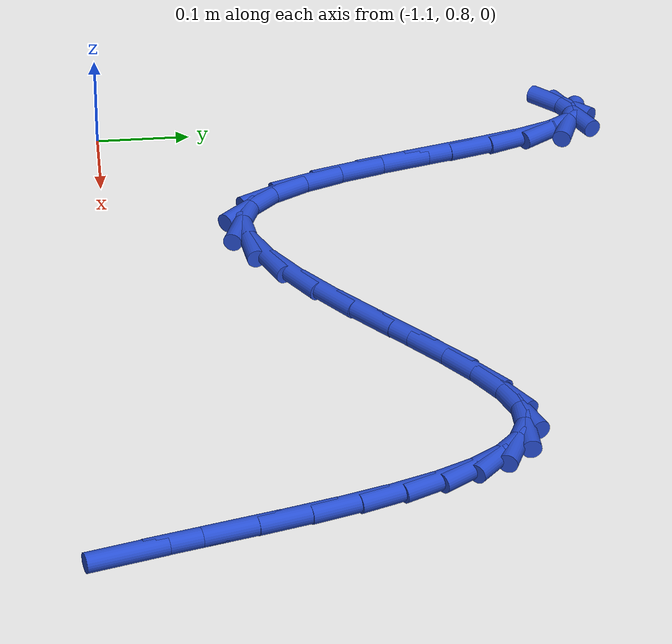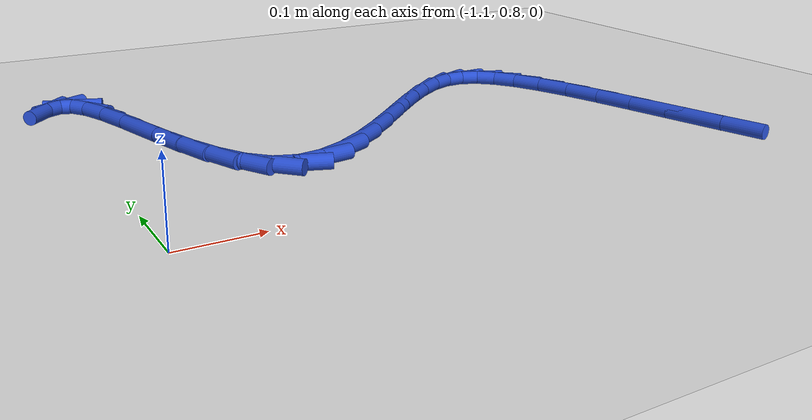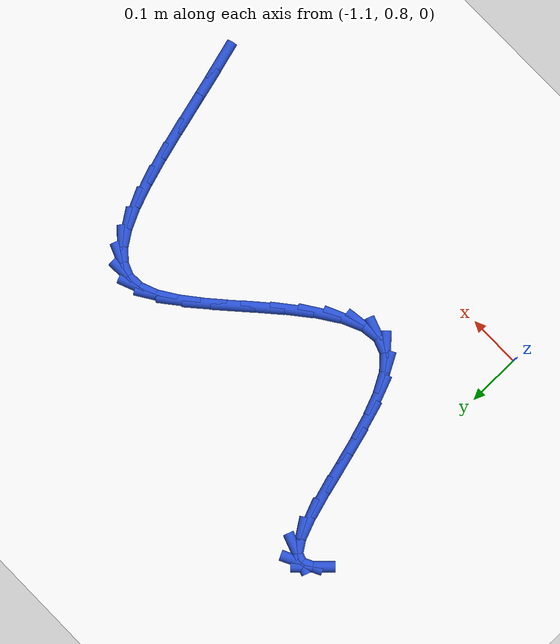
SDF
<sdf version="1.6">
 <world name="default">
  <model name="ground_plane">
   <static>1</static>
   <link name="link">
    <collision name="collision">
     <geometry><plane><normal>0 0 1</normal><size>100 100</size></plane></geometry>
     <surface><friction><ode><mu>100</mu><mu2>50</mu2></ode></friction></surface>
    </collision>
    <visual name="visual">
     <cast_shadows>0</cast_shadows>
     <geometry><plane><normal>0 0 1</normal><size>100 100</size></plane></geometry>
     <material>
      <script><uri>file://media/materials/scripts/gazebo.material</uri><name>Gazebo/WhiteGlow</name></script>
     </material>
    </visual>
   </link>
  </model>
  <model name="line">
   <link name="link_20">
    <pose>-0.34142749870786654 0.7994927071193892 0.01 0 1.57 -1.3094619707613027</pose>
    <collision name="collision">
     <geometry><cylinder><radius>0.01</radius><length>0.08</length></cylinder></geometry>
    </collision>
    <visual name="visual">
     <material>
      <script><name>Gazebo/Blue</name><uri>file://media/materials/scripts/gazebo.material</uri></script>
     </material>
     <geometry><cylinder><radius>0.01</radius><length>0.08</length></cylinder></geometry>
    </visual>
   </link>
   <link name="link_21">
    <pose>-0.35602301614095916 0.8540654192811773 0.01 0 1.57 -1.3215225272024367</pose>
    <collision name="collision">
     <geometry><cylinder><radius>0.01</radius><length>0.08</length></cylinder></geometry>
    </collision>
    <visual name="visual">
     <material>
      <script><name>Gazebo/Blue</name><uri>file://media/materials/scripts/gazebo.material</uri></script>
     </material>
     <geometry><cylinder><radius>0.01</radius><length>0.08</length></cylinder></geometry>
    </visual>
   </link>
   <link name="link_22">
    <pose>-0.3698339758669497 0.9083178458293415 0.01 0 1.57 -1.3205619688914751</pose>
    <collision name="collision">
     <geometry><cylinder><radius>0.01</radius><length>0.08</length></cylinder></geometry>
    </collision>
    <visual name="visual">
     <material>
      <script><name>Gazebo/Blue</name><uri>file://media/materials/scripts/gazebo.material</uri></script>
     </material>
     <geometry><cylinder><radius>0.01</radius><length>0.08</length></cylinder></geometry>
    </visual>
   </link>
   <link name="link_23">
    <pose>-0.3833226002028399 0.9610919812214322 0.01 0 1.57 -1.3053881172568562</pose>
    <collision name="collision">
     <geometry><cylinder><radius>0.01</radius><length>0.08</length></cylinder></geometry>
    </collision>
    <visual name="visual">
     <material>
      <script><name>Gazebo/Blue</name><uri>file://media/materials/scripts/gazebo.material</uri></script>
     </material>
     <geometry><cylinder><radius>0.01</radius><length>0.08</length></cylinder></geometry>
    </visual>
   </link>
   <link name="link_24">
    <pose>-0.3969511114656321 1.0112298199150007 0.01 0 1.57 -1.2728677406237572</pose>
    <collision name="collision">
     <geometry><cylinder><radius>0.01</radius><length>0.08</length></cylinder></geometry>
    </collision>
    <visual name="visual">
     <material>
      <script><name>Gazebo/Blue</name><uri>file://media/materials/scripts/gazebo.material</uri></script>
     </material>
     <geometry><cylinder><radius>0.01</radius><length>0.08</length></cylinder></geometry>
    </visual>
   </link>
   <link name="link_25">
    <pose>-0.4111817319723284 1.057573356367598 0.01 0 1.57 -1.216837287308311</pose>
    <collision name="collision">
     <geometry><cylinder><radius>0.01</radius><length>0.08</length></cylinder></geometry>
    </collision>
    <visual name="visual">
     <material>
      <script><name>Gazebo/Blue</name><uri>file://media/materials/scripts/gazebo.material</uri></script>
     </material>
     <geometry><cylinder><radius>0.01</radius><length>0.08</length></cylinder></geometry>
    </visual>
   </link>
   <link name="link_26">
    <pose>-0.4264766840399307 1.0989645850367746 0.01 0 1.57 -1.1258904108804455</pose>
    <collision name="collision">
     <geometry><cylinder><radius>0.01</radius><length>0.08</length></cylinder></geometry>
    </collision>
    <visual name="visual">
     <material>
      <script><name>Gazebo/Blue</name><uri>file://media/materials/scripts/gazebo.material</uri></script>
     </material>
     <geometry><cylinder><radius>0.01</radius><length>0.08</length></cylinder></geometry>
    </visual>
   </link>
   <link name="link_27">
    <pose>-0.4432981899854412 1.1342455003800818 0.01 0 1.57 -0.9794593696613393</pose>
    <collision name="collision">
     <geometry><cylinder><radius>0.01</radius><length>0.08</length></cylinder></geometry>
    </collision>
    <visual name="visual">
     <material>
      <script><name>Gazebo/Blue</name><uri>file://media/materials/scripts/gazebo.material</uri></script>
     </material>
     <geometry><cylinder><radius>0.01</radius><length>0.08</length></cylinder></geometry>
    </visual>
   </link>
   <link name="link_28">
    <pose>-0.4621084721258619 1.16225809685507 0.01 0 1.57 -0.744414785704542</pose>
    <collision name="collision">
     <geometry><cylinder><radius>0.01</radius><length>0.08</length></cylinder></geometry>
    </collision>
    <visual name="visual">
     <material>
      <script><name>Gazebo/Blue</name><uri>file://media/materials/scripts/gazebo.material</uri></script>
     </material>
     <geometry><cylinder><radius>0.01</radius><length>0.08</length></cylinder></geometry>
    </visual>
   </link>
   <link name="link_29">
    <pose>-0.4833697527781947 1.1818443689192901 0.01 0 1.57 -0.3922942334892025</pose>
    <collision name="collision">
     <geometry><cylinder><radius>0.01</radius><length>0.08</length></cylinder></geometry>
    </collision>
    <visual name="visual">
     <material>
      <script><name>Gazebo/Blue</name><uri>file://media/materials/scripts/gazebo.material</uri></script>
     </material>
     <geometry><cylinder><radius>0.01</radius><length>0.08</length></cylinder></geometry>
    </visual>
   </link>
   <link name="link_30">
    <pose>-0.5075442542594422 1.1918463110302937 0.01 0 1.57 0.026868119838280226</pose>
    <collision name="collision">
     <geometry><cylinder><radius>0.01</radius><length>0.08</length></cylinder></geometry>
    </collision>
    <visual name="visual">
     <material>
      <script><name>Gazebo/Blue</name><uri>file://media/materials/scripts/gazebo.material</uri></script>
     </material>
     <geometry><cylinder><radius>0.01</radius><length>0.08</length></cylinder></geometry>
    </visual>
   </link>
   <link name="link_31">
    <pose>-0.535094198886606 1.191105917645631 0.01 0 1.57 0.3746171646383171</pose>
    <collision name="collision">
     <geometry><cylinder><radius>0.01</radius><length>0.08</length></cylinder></geometry>
    </collision>
    <visual name="visual">
     <material>
      <script><name>Gazebo/Blue</name><uri>file://media/materials/scripts/gazebo.material</uri></script>
     </material>
     <geometry><cylinder><radius>0.01</radius><length>0.08</length></cylinder></geometry>
    </visual>
   </link>
   <link name="link_32">
    <pose>-0.5663703722770722 1.1788086113641076 0.01 0 1.57 0.5713890799570683</pose>
    <collision name="collision">
     <geometry><cylinder><radius>0.01</radius><length>0.08</length></cylinder></geometry>
    </collision>
    <visual name="visual">
     <material>
      <script><name>Gazebo/Blue</name><uri>file://media/materials/scripts/gazebo.material</uri></script>
     </material>
     <geometry><cylinder><radius>0.01</radius><length>0.08</length></cylinder></geometry>
    </visual>
   </link>
   <link name="link_33">
    <pose>-0.6009284577402193 1.1565901790602746 0.01 0 1.57 0.6714211400236234</pose>
    <collision name="collision">
     <geometry><cylinder><radius>0.01</radius><length>0.08</length></cylinder></geometry>
    </collision>
    <visual name="visual">
     <material>
      <script><name>Gazebo/Blue</name><uri>file://media/materials/scripts/gazebo.material</uri></script>
     </material>
     <geometry><cylinder><radius>0.01</radius><length>0.08</length></cylinder></geometry>
    </visual>
   </link>
   <link name="link_34">
    <pose>-0.6379786200959717 1.1271512343041146 0.01 0 1.57 0.7195220363019236</pose>
    <collision name="collision">
     <geometry><cylinder><radius>0.01</radius><length>0.08</length></cylinder></geometry>
    </collision>
    <visual name="visual">
     <material>
      <script><name>Gazebo/Blue</name><uri>file://media/materials/scripts/gazebo.material</uri></script>
     </material>
     <geometry><cylinder><radius>0.01</radius><length>0.08</length></cylinder></geometry>
    </visual>
   </link>
   <link name="link_35">
    <pose>-0.6767296137997205 1.0931967371589302 0.01 0 1.57 0.7337972690347124</pose>
    <collision name="collision">
     <geometry><cylinder><radius>0.01</radius><length>0.08</length></cylinder></geometry>
    </collision>
    <visual name="visual">
     <material>
      <script><name>Gazebo/Blue</name><uri>file://media/materials/scripts/gazebo.material</uri></script>
     </material>
     <geometry><cylinder><radius>0.01</radius><length>0.08</length></cylinder></geometry>
    </visual>
   </link>
   <link name="link_36">
    <pose>-0.7163901933068564 1.0574316476880232 0.01 0 1.57 0.719742877539613</pose>
    <collision name="collision">
     <geometry><cylinder><radius>0.01</radius><length>0.08</length></cylinder></geometry>
    </collision>
    <visual name="visual">
     <material>
      <script><name>Gazebo/Blue</name><uri>file://media/materials/scripts/gazebo.material</uri></script>
     </material>
     <geometry><cylinder><radius>0.01</radius><length>0.08</length></cylinder></geometry>
    </visual>
   </link>
   <link name="link_37">
    <pose>-0.7561691130727703 1.0225609259546955 0.01 0 1.57 0.6745316939928019</pose>
    <collision name="collision">
     <geometry><cylinder><radius>0.01</radius><length>0.08</length></cylinder></geometry>
    </collision>
    <visual name="visual">
     <material>
      <script><name>Gazebo/Blue</name><uri>file://media/materials/scripts/gazebo.material</uri></script>
     </material>
     <geometry><cylinder><radius>0.01</radius><length>0.08</length></cylinder></geometry>
    </visual>
   </link>
   <link name="link_38">
    <pose>-0.7952751275528531 0.9912895320222496 0.01 0 1.57 0.5856545201994937</pose>
    <collision name="collision">
     <geometry><cylinder><radius>0.01</radius><length>0.08</length></cylinder></geometry>
    </collision>
    <visual name="visual">
     <material>
      <script><name>Gazebo/Blue</name><uri>file://media/materials/scripts/gazebo.material</uri></script>
     </material>
     <geometry><cylinder><radius>0.01</radius><length>0.08</length></cylinder></geometry>
    </visual>
   </link>
   <link name="link_39">
    <pose>-0.8329169912024958 0.9663224259539875 0.01 0 1.57 0.42365143261723803</pose>
    <collision name="collision">
     <geometry><cylinder><radius>0.01</radius><length>0.08</length></cylinder></geometry>
    </collision>
    <visual name="visual">
     <material>
      <script><name>Gazebo/Blue</name><uri>file://media/materials/scripts/gazebo.material</uri></script>
     </material>
     <geometry><cylinder><radius>0.01</radius><length>0.08</length></cylinder></geometry>
    </visual>
   </link>
   <link name="link_40">
    <pose>-0.8683034584770891 0.9503645678132113 0.01 0 1.57 0.1304750963226663</pose>
    <collision name="collision">
     <geometry><cylinder><radius>0.01</radius><length>0.08</length></cylinder></geometry>
    </collision>
    <visual name="visual">
     <material>
      <script><name>Gazebo/Blue</name><uri>file://media/materials/scripts/gazebo.material</uri></script>
     </material>
     <geometry><cylinder><radius>0.01</radius><length>0.08</length></cylinder></geometry>
    </visual>
   </link>
   <link name="link_41">
    <pose>-0.9006432838320237 0.9461209176632231 0.01 0 1.57 -0.3424716379809914</pose>
    <collision name="collision">
     <geometry><cylinder><radius>0.01</radius><length>0.08</length></cylinder></geometry>
    </collision>
    <visual name="visual">
     <material>
      <script><name>Gazebo/Blue</name><uri>file://media/materials/scripts/gazebo.material</uri></script>
     </material>
     <geometry><cylinder><radius>0.01</radius><length>0.08</length></cylinder></geometry>
    </visual>
   </link>
   <link name="link_42">
    <pose>-0.9291482684194343 0.9562835213448168 0.01 0 1.57 -0.8061007375267966</pose>
    <collision name="collision">
     <geometry><cylinder><radius>0.01</radius><length>0.08</length></cylinder></geometry>
    </collision>
    <visual name="visual">
     <material>
      <script><name>Gazebo/Blue</name><uri>file://media/materials/scripts/gazebo.material</uri></script>
     </material>
     <geometry><cylinder><radius>0.01</radius><length>0.08</length></cylinder></geometry>
    </visual>
   </link>
   <link name="link_43">
    <pose>-0.9534788120531184 0.9816429217201903 0.01 0 1.57 -1.0652152955537457</pose>
    <collision name="collision">
     <geometry><cylinder><radius>0.01</radius><length>0.08</length></cylinder></geometry>
    </collision>
    <visual name="visual">
     <material>
      <script><name>Gazebo/Blue</name><uri>file://media/materials/scripts/gazebo.material</uri></script>
     </material>
     <geometry><cylinder><radius>0.01</radius><length>0.08</length></cylinder></geometry>
    </visual>
   </link>
   <link name="link_44">
    <pose>-0.974213261416617 1.0190987033046222 0.01 0 1.57 -1.2008590520488491</pose>
    <collision name="collision">
     <geometry><cylinder><radius>0.01</radius><length>0.08</length></cylinder></geometry>
    </collision>
    <visual name="visual">
     <material>
      <script><name>Gazebo/Blue</name><uri>file://media/materials/scripts/gazebo.material</uri></script>
     </material>
     <geometry><cylinder><radius>0.01</radius><length>0.08</length></cylinder></geometry>
    </visual>
   </link>
   <link name="link_45">
    <pose>-0.9920422534735659 1.0650744788365782 0.01 0 1.57 -1.2732544466909295</pose>
    <collision name="collision">
     <geometry><cylinder><radius>0.01</radius><length>0.08</length></cylinder></geometry>
    </collision>
    <visual name="visual">
     <material>
      <script><name>Gazebo/Blue</name><uri>file://media/materials/scripts/gazebo.material</uri></script>
     </material>
     <geometry><cylinder><radius>0.01</radius><length>0.08</length></cylinder></geometry>
    </visual>
   </link>
   <link name="link_46">
    <pose>-1.0076564251876006 1.1159938610545233 0.01 0 1.57 -1.3075728800612978</pose>
    <collision name="collision">
     <geometry><cylinder><radius>0.01</radius><length>0.08</length></cylinder></geometry>
    </collision>
    <visual name="visual">
     <material>
      <script><name>Gazebo/Blue</name><uri>file://media/materials/scripts/gazebo.material</uri></script>
     </material>
     <geometry><cylinder><radius>0.01</radius><length>0.08</length></cylinder></geometry>
    </visual>
   </link>
   <link name="link_47">
    <pose>-1.0217464135223568 1.1682804626969236 0.01 0 1.57 -1.3120132933813489</pose>
    <collision name="collision">
     <geometry><cylinder><radius>0.01</radius><length>0.08</length></cylinder></geometry>
    </collision>
    <visual name="visual">
     <material>
      <script><name>Gazebo/Blue</name><uri>file://media/materials/scripts/gazebo.material</uri></script>
     </material>
     <geometry><cylinder><radius>0.01</radius><length>0.08</length></cylinder></geometry>
    </visual>
   </link>
   <link name="link_48">
    <pose>-1.03500285544147 1.2183578965022444 0.01 0 1.57 -1.2829481793455673</pose>
    <collision name="collision">
     <geometry><cylinder><radius>0.01</radius><length>0.08</length></cylinder></geometry>
    </collision>
    <visual name="visual">
     <material>
      <script><name>Gazebo/Blue</name><uri>file://media/materials/scripts/gazebo.material</uri></script>
     </material>
     <geometry><cylinder><radius>0.01</radius><length>0.08</length></cylinder></geometry>
    </visual>
   </link>
   <link name="link_49">
    <pose>-1.0481163879085766 1.2626497752089523 0.01 0 1.57 -1.1979818109754052</pose>
    <collision name="collision">
     <geometry><cylinder><radius>0.01</radius><length>0.08</length></cylinder></geometry>
    </collision>
    <visual name="visual">
     <material>
      <script><name>Gazebo/Blue</name><uri>file://media/materials/scripts/gazebo.material</uri></script>
     </material>
     <geometry><cylinder><radius>0.01</radius><length>0.08</length></cylinder></geometry>
    </visual>
   </link>
   <link name="link_50">
    <pose>-1.0617776478873115 1.2975797115555114 0.01 0 1.57 -0.9753214857243382</pose>
    <collision name="collision">
     <geometry><cylinder><radius>0.01</radius><length>0.08</length></cylinder></geometry>
    </collision>
    <visual name="visual">
     <material>
      <script><name>Gazebo/Blue</name><uri>file://media/materials/scripts/gazebo.material</uri></script>
     </material>
     <geometry><cylinder><radius>0.01</radius><length>0.08</length></cylinder></geometry>
    </visual>
   </link>
   <link name="link_51">
    <pose>-1.076677272341311 1.319571318280389 0.01 0 1.57 -0.3417042652146167</pose>
    <collision name="collision">
     <geometry><cylinder><radius>0.01</radius><length>0.08</length></cylinder></geometry>
    </collision>
    <visual name="visual">
     <material>
      <script><name>Gazebo/Blue</name><uri>file://media/materials/scripts/gazebo.material</uri></script>
     </material>
     <geometry><cylinder><radius>0.01</radius><length>0.08</length></cylinder></geometry>
    </visual>
   </link>
   <link name="link_52">
    <pose>-1.0934564583698798 1.3255389290189208 0.01 0 1.57 0.4554692151168353</pose>
    <collision name="collision">
     <geometry><cylinder><radius>0.01</radius><length>0.08</length></cylinder></geometry>
    </collision>
    <visual name="visual">
     <material>
      <script><name>Gazebo/Blue</name><uri>file://media/materials/scripts/gazebo.material</uri></script>
     </material>
     <geometry><cylinder><radius>0.01</radius><length>0.08</length></cylinder></geometry>
    </visual>
   </link>
   <link name="link_53">
    <pose>-1.1123654891166563 1.316276937546561 0.01 0 1.57 0.8028645329625573</pose>
    <collision name="collision">
     <geometry><cylinder><radius>0.01</radius><length>0.08</length></cylinder></geometry>
    </collision>
    <visual name="visual">
     <material>
      <script><name>Gazebo/Blue</name><uri>file://media/materials/scripts/gazebo.material</uri></script>
     </material>
     <geometry><cylinder><radius>0.01</radius><length>0.08</length></cylinder></geometry>
    </visual>
   </link>
  </model>
 </world>
</sdf>
